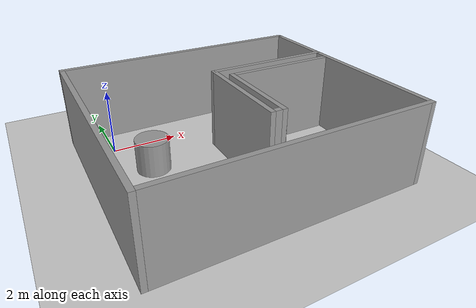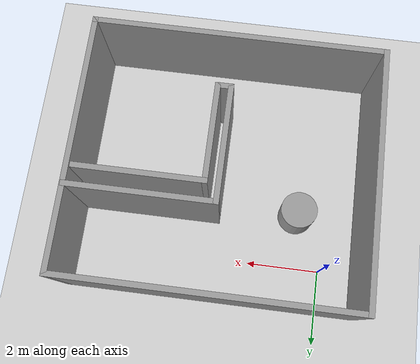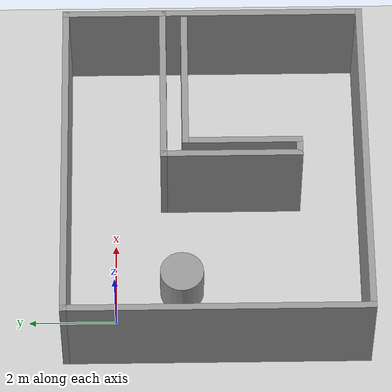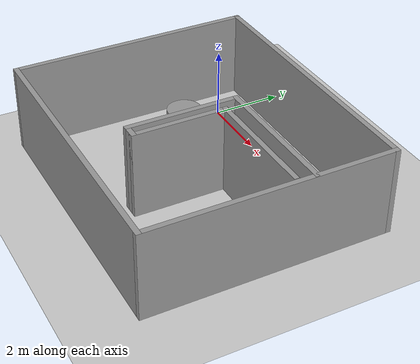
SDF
<sdf version="1.7">
 <world name="default">
  <light name="sun" type="directional">
   <pose>0 0 10 0 -0 0</pose>
   <diffuse>0.8 0.8 0.8 1</diffuse>
   <specular>0.2 0.2 0.2 1</specular>
   <attenuation>
    <range>1000</range>
    <constant>0.9</constant>
    <linear>0.01</linear>
    <quadratic>0.001</quadratic>
   </attenuation>
   <direction>-0.5 0.1 -0.9</direction>
   <spot><inner_angle>0</inner_angle><outer_angle>0</outer_angle><falloff>0</falloff></spot>
  </light>
  <model name="ground_plane">
   <static>1</static>
   <link name="link">
    <collision name="collision">
     <geometry><plane><normal>0 0 1</normal><size>100 100</size></plane></geometry>
     <surface>
      <contact><collide_bitmask>65535</collide_bitmask></contact>
      <friction><ode><mu>100</mu><mu2>50</mu2></ode></friction>
     </surface>
    </collision>
    <visual name="visual">
     <cast_shadows>0</cast_shadows>
     <geometry><plane><normal>0 0 1</normal><size>100 100</size></plane></geometry>
     <material>
      <script><uri>file://media/materials/scripts/gazebo.material</uri><name>Gazebo/Grey</name></script>
     </material>
    </visual>
   </link>
  </model>
  <gravity>0 0 -9.8</gravity>
  <magnetic_field>6e-06 2.3e-05 -4.2e-05</magnetic_field>
  <atmosphere type="adiabatic"/>
  <physics type="ode">
   <max_step_size>0.001</max_step_size>
   <real_time_factor>1</real_time_factor>
   <real_time_update_rate>1000</real_time_update_rate>
  </physics>
  <scene><ambient>0.4 0.4 0.4 1</ambient><background>0.7 0.7 0.7 1</background><shadows>1</shadows></scene>
  <spherical_coordinates>
   <surface_model>EARTH_WGS84</surface_model>
   <latitude_deg>0</latitude_deg>
   <longitude_deg>0</longitude_deg>
   <elevation>0</elevation>
   <heading_deg>0</heading_deg>
  </spherical_coordinates>
  <model name="Marker_World_6">
   <pose>2.94687 -1.58641 -0 0 -0 0</pose>
   <link name="Wall_16">
    <collision name="Wall_16_Collision">
     <geometry><box><size>8 0.15 2.5</size></box></geometry>
     <pose>0 0 1.25 0 -0 0</pose>
    </collision>
    <visual name="Wall_16_Visual">
     <pose>0 0 1.25 0 -0 0</pose>
     <geometry><box><size>8 0.15 2.5</size></box></geometry>
     <material>
      <script><uri>file://media/materials/scripts/gazebo.material</uri><name>Gazebo/Grey</name></script>
      <ambient>1 1 1 1</ambient>
     </material>
     <meta><layer>0</layer></meta>
    </visual>
    <pose>0 -4.13255 0 0 -0 0</pose>
   </link>
   <link name="Wall_17">
    <collision name="Wall_17_Collision">
     <geometry><box><size>7 0.15 2.5</size></box></geometry>
     <pose>0 0 1.25 0 -0 0</pose>
    </collision>
    <visual name="Wall_17_Visual">
     <pose>0 0 1.25 0 -0 0</pose>
     <geometry><box><size>7 0.15 2.5</size></box></geometry>
     <material>
      <script><uri>file://media/materials/scripts/gazebo.material</uri><name>Gazebo/Grey</name></script>
      <ambient>1 1 1 1</ambient>
     </material>
     <meta><layer>0</layer></meta>
    </visual>
    <pose>3.925 -0.707555 0 0 -0 1.5708</pose>
   </link>
   <link name="Wall_18">
    <collision name="Wall_18_Collision">
     <geometry><box><size>8 0.15 2.5</size></box></geometry>
     <pose>0 0 1.25 0 -0 0</pose>
    </collision>
    <visual name="Wall_18_Visual">
     <pose>0 0 1.25 0 -0 0</pose>
     <geometry><box><size>8 0.15 2.5</size></box></geometry>
     <material>
      <script><uri>file://media/materials/scripts/gazebo.material</uri><name>Gazebo/Grey</name></script>
      <ambient>1 1 1 1</ambient>
     </material>
     <meta><layer>0</layer></meta>
    </visual>
    <pose>0 2.71745 0 0 -0 3.14159</pose>
   </link>
   <link name="Wall_19">
    <collision name="Wall_19_Collision">
     <geometry><box><size>7 0.15 2.5</size></box></geometry>
     <pose>0 0 1.25 0 -0 0</pose>
    </collision>
    <visual name="Wall_19_Visual">
     <pose>0 0 1.25 0 -0 0</pose>
     <geometry><box><size>7 0.15 2.5</size></box></geometry>
     <material>
      <script><uri>file://media/materials/scripts/gazebo.material</uri><name>Gazebo/Grey</name></script>
      <ambient>1 1 1 1</ambient>
     </material>
     <meta><layer>0</layer></meta>
    </visual>
    <pose>-3.925 -0.707555 0 0 -0 -1.5708</pose>
   </link>
   <link name="Wall_21">
    <collision name="Wall_21_Collision">
     <geometry><box><size>4 0.15 2.5</size></box></geometry>
     <pose>0 0 1.25 0 -0 0</pose>
    </collision>
    <visual name="Wall_21_Visual">
     <pose>0 0 1.25 0 -0 0</pose>
     <geometry><box><size>4 0.15 2.5</size></box></geometry>
     <material>
      <script><uri>file://media/materials/scripts/gazebo.material</uri><name>Gazebo/Grey</name></script>
      <ambient>1 1 1 1</ambient>
     </material>
     <meta><layer>0</layer></meta>
    </visual>
    <pose>1.98041 0.461576 0 0 -0 3.14159</pose>
   </link>
   <link name="Wall_22">
    <collision name="Wall_22_Collision">
     <geometry><box><size>3.25 0.15 2.5</size></box></geometry>
     <pose>0 0 1.25 0 -0 0</pose>
    </collision>
    <visual name="Wall_22_Visual">
     <pose>0 0 1.25 0 -0 0</pose>
     <geometry><box><size>3.25 0.15 2.5</size></box></geometry>
     <material>
      <script><uri>file://media/materials/scripts/gazebo.material</uri><name>Gazebo/Grey</name></script>
      <ambient>1 1 1 1</ambient>
     </material>
     <meta><layer>0</layer></meta>
    </visual>
    <pose>0.055413 -1.08842 0 0 -0 -1.5708</pose>
   </link>
   <link name="Wall_23">
    <collision name="Wall_23_Collision">
     <geometry><box><size>0.5 0.15 2.5</size></box></geometry>
     <pose>0 0 1.25 0 -0 0</pose>
    </collision>
    <visual name="Wall_23_Visual">
     <pose>0 0 1.25 0 -0 0</pose>
     <geometry><box><size>0.5 0.15 2.5</size></box></geometry>
     <material>
      <script><uri>file://media/materials/scripts/gazebo.material</uri><name>Gazebo/Grey</name></script>
      <ambient>1 1 1 1</ambient>
     </material>
     <meta><layer>0</layer></meta>
    </visual>
    <pose>0.230413 -2.63842 0 0 -0 0</pose>
   </link>
   <link name="Wall_24">
    <collision name="Wall_24_Collision">
     <geometry><box><size>2.75 0.15 2.5</size></box></geometry>
     <pose>0 0 1.25 0 -0 0</pose>
    </collision>
    <visual name="Wall_24_Visual">
     <pose>0 0 1.25 0 -0 0</pose>
     <geometry><box><size>2.75 0.15 2.5</size></box></geometry>
     <material>
      <script><uri>file://media/materials/scripts/gazebo.material</uri><name>Gazebo/Grey</name></script>
      <ambient>1 1 1 1</ambient>
     </material>
     <meta><layer>0</layer></meta>
    </visual>
    <pose>0.405413 -1.33842 0 0 -0 1.5708</pose>
   </link>
   <link name="Wall_25">
    <collision name="Wall_25_Collision">
     <geometry><box><size>3.5 0.15 2.5</size></box></geometry>
     <pose>0 0 1.25 0 -0 0</pose>
    </collision>
    <visual name="Wall_25_Visual">
     <pose>0 0 1.25 0 -0 0</pose>
     <geometry><box><size>3.5 0.15 2.5</size></box></geometry>
     <material>
      <script><uri>file://media/materials/scripts/gazebo.material</uri><name>Gazebo/Grey</name></script>
      <ambient>1 1 1 1</ambient>
     </material>
     <meta><layer>0</layer></meta>
    </visual>
    <pose>2.08041 -0.038424 0 0 -0 0</pose>
   </link>
   <static>1</static>
  </model>
  <model name="unit_cylinder">
   <pose>0.770674 -1.51304 0.499998 3e-06 -4e-06 0</pose>
   <link name="link">
    <inertial>
     <mass>1</mass>
     <inertia><ixx>0.145833</ixx><ixy>0</ixy><ixz>0</ixz><iyy>0.145833</iyy><iyz>0</iyz><izz>0.125</izz></inertia>
    </inertial>
    <collision name="collision">
     <geometry><cylinder><radius>0.5</radius><length>1</length></cylinder></geometry>
    </collision>
    <visual name="visual">
     <geometry><cylinder><radius>0.5</radius><length>1</length></cylinder></geometry>
     <material>
      <script><name>Gazebo/Grey</name><uri>file://media/materials/scripts/gazebo.material</uri></script>
     </material>
    </visual>
   </link>
  </model>
 </world>
</sdf>
